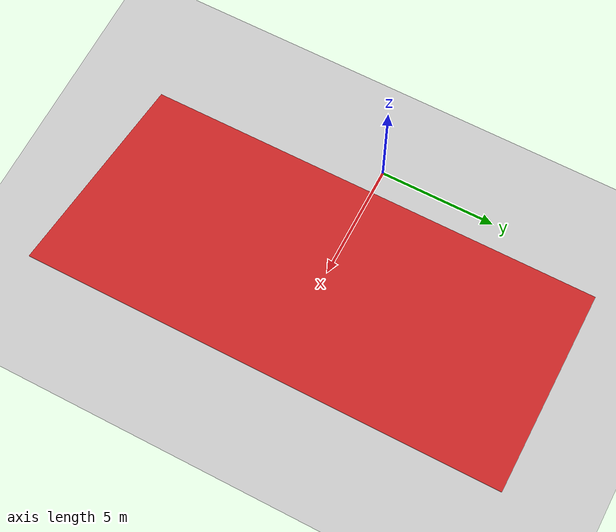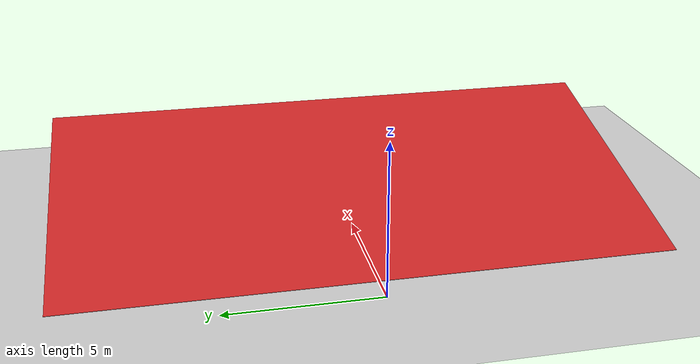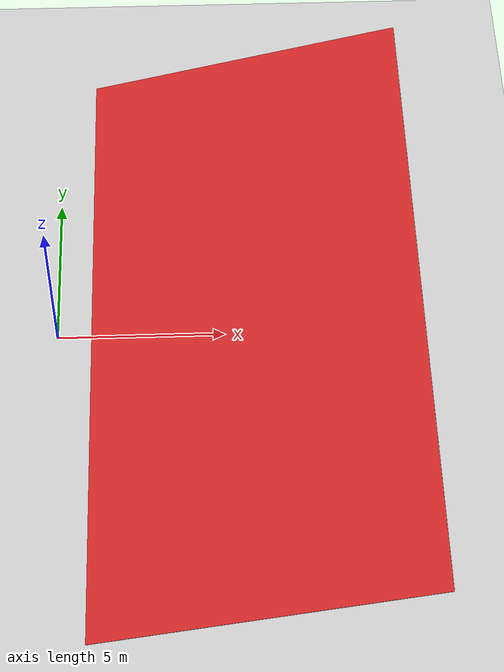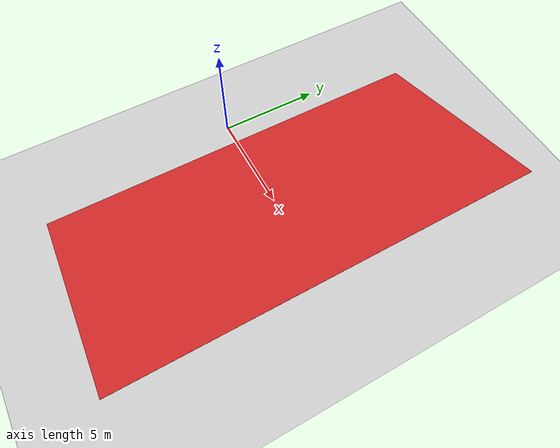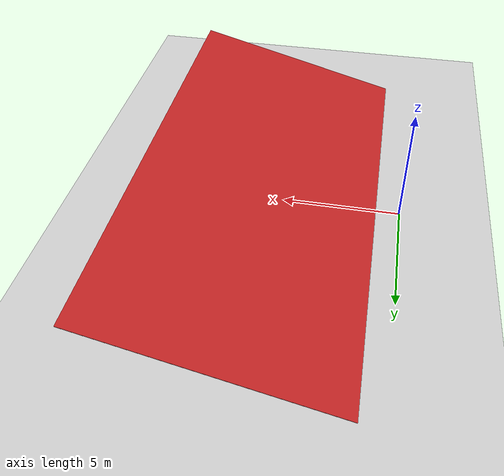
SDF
<sdf version="1.6">
 <world name="default">
  <light name="sun" type="directional">
   <pose>0 0 10 0 -0 0</pose>
   <diffuse>0.8 0.8 0.8 1</diffuse>
   <specular>0.2 0.2 0.2 1</specular>
   <attenuation>
    <range>1000</range>
    <constant>0.9</constant>
    <linear>0.01</linear>
    <quadratic>0.001</quadratic>
   </attenuation>
   <direction>-0.5 0.1 -0.9</direction>
  </light>
  <model name="ground_plane">
   <static>1</static>
   <link name="link">
    <collision name="collision">
     <geometry><plane><normal>0 0 1</normal><size>100 100</size></plane></geometry>
     <surface>
      <contact><collide_bitmask>65535</collide_bitmask></contact>
      <friction><ode><mu>100</mu><mu2>50</mu2></ode></friction>
     </surface>
    </collision>
    <visual name="visual">
     <cast_shadows>0</cast_shadows>
     <geometry><plane><normal>0 0 1</normal><size>100 100</size></plane></geometry>
     <material>
      <script><uri>file://media/materials/scripts/gazebo.material</uri><name>Gazebo/Grey</name></script>
     </material>
    </visual>
   </link>
  </model>
  <model name="tilted_floor">
   <static>1</static>
   <pose>1 0 0 0 -0.2618 0</pose>
   <link name="link">
    <pose>5 0 -0.01 0 -0 0</pose>
    <collision name="collision">
     <geometry><box><size>10 20 0.02</size></box></geometry>
     <surface>
      <contact><collide_bitmask>65535</collide_bitmask></contact>
      <friction><ode><mu>100</mu><mu2>50</mu2></ode></friction>
     </surface>
    </collision>
    <visual name="visual">
     <geometry><box><size>10 20 0.02</size></box></geometry>
     <material>
      <script><uri>file://media/materials/scripts/gazebo.material</uri><name>Gazebo/Red</name></script>
     </material>
     <transparency>0.1</transparency>
    </visual>
   </link>
  </model>
  <gravity>0 0 -9.8</gravity>
  <magnetic_field>6e-06 2.3e-05 -4.2e-05</magnetic_field>
  <atmosphere type="adiabatic"/>
  <physics name="default_physics" default="0" type="ode">
   <max_step_size>0.001</max_step_size>
   <real_time_factor>1</real_time_factor>
   <real_time_update_rate>1000</real_time_update_rate>
  </physics>
  <scene><ambient>0.4 0.4 0.4 1</ambient><background>0.7 0.7 0.7 1</background><shadows>1</shadows></scene>
  <audio><device>default</device></audio>
  <spherical_coordinates>
   <surface_model>EARTH_WGS84</surface_model>
   <latitude_deg>0</latitude_deg>
   <longitude_deg>0</longitude_deg>
   <elevation>0</elevation>
   <heading_deg>0</heading_deg>
  </spherical_coordinates>
 </world>
</sdf>
